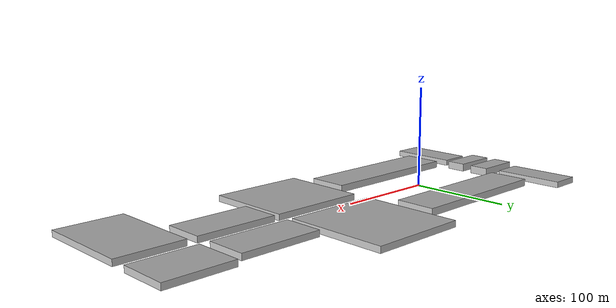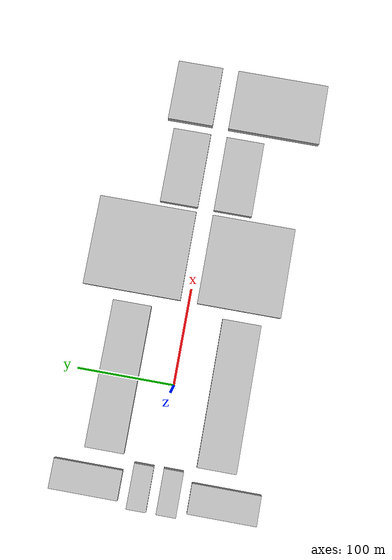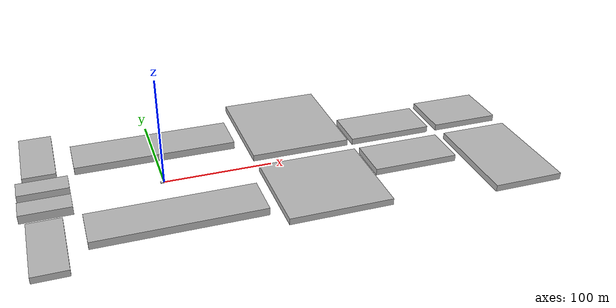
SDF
<sdf version="1.4">
 <world name="default">
  <scene><ambient>0.4 0.4 0.4 1</ambient><background>0.7 0.7 0.7 1</background><shadows>true</shadows></scene>
  <include><uri>model://sun</uri></include>
  <model name="horse_block_mod">
   <static>true</static>
   <pose>0 0 1.25 0 0 0</pose>
   <link name="horse_block">
    <collision name="horse_block_Collision"><geometry><box><size>2 1 2.5</size></box></geometry></collision>
    <visual name="horse_block_Visual">
     <geometry><box><size>2 1 2.5</size></box></geometry>
     <material>
      <script>
       <uri>/home/iris/catkin_ws/src/torino_quadcopter/meshes/materials</uri>
       <name>marble/Diffuse</name>
      </script>
     </material>
    </visual>
   </link>
  </model>
  <model name="horse_scalini_mod">
   <static>true</static>
   <pose>0 0 0.1 0 0 0</pose>
   <link name="horse_scalini">
    <collision name="horse_scalini_Collision"><geometry><box><size>6 3 0.2</size></box></geometry></collision>
    <visual name="horse_scalini_Visual">
     <geometry><box><size>7 3 0.2</size></box></geometry>
     <material>
      <script>
       <uri>/home/iris/catkin_ws/src/torino_quadcopter/meshes/materials</uri>
       <name>marble/Diffuse</name>
      </script>
     </material>
    </visual>
   </link>
  </model>
  <model name="horse_scalini_mod2">
   <static>true</static>
   <pose>0 0 0.2 0 0 0</pose>
   <link name="horse_scalini">
    <collision name="horse_scalini_Collision2"><geometry><box><size>4 2 0.4</size></box></geometry></collision>
    <visual name="horse_scalini_Visual2">
     <geometry><box><size>4 2 0.4</size></box></geometry>
     <material>
      <script>
       <uri>/home/iris/catkin_ws/src/torino_quadcopter/meshes/materials</uri>
       <name>marble/Diffuse</name>
      </script>
     </material>
    </visual>
   </link>
  </model>
  <model name="intesa_mod">
   <static>true</static>
   <pose>0 57 3.5 0 0 0</pose>
   <link name="intesa">
    <inertial><mass>1000</mass><origin xyz="0 0 0" rpy=" 0 0 0"/></inertial>
    <collision name="intesa_Collision">
     <geometry><box><size>150 40 7</size></box></geometry>
     <surface><friction><ode><mu>10000</mu><mu2>10000</mu2></ode></friction></surface>
    </collision>
    <visual name="intesa_Visual"><geometry><box><size>150 40 7</size></box></geometry></visual>
   </link>
  </model>
  <model name="intesa_mod2">
   <static>true</static>
   <pose>0 -57 3.5 0 0 0</pose>
   <link name="intesa">
    <inertial><mass>1000</mass><origin xyz="0 0 0" rpy=" 0 0 0"/></inertial>
    <collision name="intesa_Collision">
     <geometry><box><size>150 40 7</size></box></geometry>
     <surface><friction><ode><mu>10000</mu><mu2>10000</mu2></ode></friction></surface>
    </collision>
    <visual name="intesa_Visual"><geometry><box><size>150 40 7</size></box></geometry></visual>
   </link>
  </model>
  <model name="carloBorromeo_mod">
   <static>true</static>
   <pose>-104 15 4 0 0 0</pose>
   <link name="intesa">
    <inertial><mass>1000</mass><origin xyz="0 0 0" rpy=" 0 0 0"/></inertial>
    <collision name="carloBorromeo_Collision">
     <geometry><box><size>45 20 8</size></box></geometry>
     <surface><friction><ode><mu>10000</mu><mu2>10000</mu2></ode></friction></surface>
    </collision>
    <visual name="carloBorromeo_Visual"><geometry><box><size>45 20 8</size></box></geometry></visual>
   </link>
  </model>
  <model name="carloBorromeobuilding_mod">
   <static>true</static>
   <pose>-106 70 3 0 0 0</pose>
   <link name="intesa">
    <inertial><mass>1000</mass><origin xyz="0 0 0" rpy=" 0 0 0"/></inertial>
    <collision name="carloBorromeobuilding_Collision">
     <geometry><box><size>30 70 6</size></box></geometry>
     <surface><friction><ode><mu>10000</mu><mu2>10000</mu2></ode></friction></surface>
    </collision>
    <visual name="carloBorromeobuilding_Visual"><geometry><box><size>30 70 6</size></box></geometry></visual>
   </link>
  </model>
  <model name="stCristina_mod">
   <static>true</static>
   <pose>-104 -15 4 0 0 0</pose>
   <link name="intesa">
    <inertial><mass>1000</mass><origin xyz="0 0 0" rpy=" 0 0 0"/></inertial>
    <collision name="stCristina_Collision">
     <geometry><box><size>45 20 8</size></box></geometry>
     <surface><friction><ode><mu>10000</mu><mu2>10000</mu2></ode></friction></surface>
    </collision>
    <visual name="stCristina_Visual"><geometry><box><size>45 20 8</size></box></geometry></visual>
   </link>
  </model>
  <model name="cstCristinabuilding_mod">
   <static>true</static>
   <pose>-106 -70 3 0 0 0</pose>
   <link name="intesa">
    <inertial><mass>1000</mass><origin xyz="0 0 0" rpy=" 0 0 0"/></inertial>
    <collision name="stCristinabuilding_Collision">
     <geometry><box><size>30 70 6</size></box></geometry>
     <surface><friction><ode><mu>10000</mu><mu2>10000</mu2></ode></friction></surface>
    </collision>
    <visual name="stCristinabuilding_Visual"><geometry><box><size>30 70 6</size></box></geometry></visual>
   </link>
  </model>
  <model name="ed1_mod">
   <static>true</static>
   <pose>133 60 3 0 0 0</pose>
   <link name="ed1">
    <collision name="ed1_Collision"><geometry><box><size>94 102 6</size></box></geometry></collision>
    <visual name="ed1_Visual"><geometry><box><size>94 102 6</size></box></geometry></visual>
   </link>
  </model>
  <model name="ed2_mod">
   <static>true</static>
   <pose>133 -52 3 0 0 0</pose>
   <link name="ed2">
    <collision name="ed2_Collision"><geometry><box><size>94 87 6</size></box></geometry></collision>
    <visual name="ed2_Visual"><geometry><box><size>94 87 6</size></box></geometry></visual>
   </link>
  </model>
  <model name="ed3_mod">
   <static>true</static>
   <pose>225 28.5 3 0 0 0</pose>
   <link name="ed3">
    <collision name="ed3_Collision"><geometry><box><size>80 40 6</size></box></geometry></collision>
    <visual name="ed3_Visual"><geometry><box><size>80 40 6</size></box></geometry></visual>
   </link>
  </model>
  <model name="ed4_mod">
   <static>true</static>
   <pose>225 -28.5 3 0 0 0</pose>
   <link name="ed2">
    <collision name="ed4_Collision"><geometry><box><size>80 40 6</size></box></geometry></collision>
    <visual name="ed4_Visual"><geometry><box><size>80 40 6</size></box></geometry></visual>
   </link>
  </model>
  <model name="ed5_mod">
   <static>true</static>
   <pose>307 32.5 3 0 0 0</pose>
   <link name="ed5">
    <collision name="ed5_Collision"><geometry><box><size>65 48 6</size></box></geometry></collision>
    <visual name="ed5_Visual"><geometry><box><size>65 48 6</size></box></geometry></visual>
   </link>
  </model>
  <model name="ed6_mod">
   <static>true</static>
   <pose>307 -57 3 0 0 0</pose>
   <link name="ed6">
    <collision name="ed6_Collision"><geometry><box><size>65 97 6</size></box></geometry></collision>
    <visual name="ed6_Visual"><geometry><box><size>65 97 6</size></box></geometry></visual>
   </link>
  </model>
  <physics type="ode">
   <real_time_update_rate>1000.0</real_time_update_rate>
   <max_step_size>0.001</max_step_size>
   <real_time_factor>1</real_time_factor>
   <ode>
    <solver>
     <type>quick</type>
     <iters>150</iters>
     <precon_iters>0</precon_iters>
     <sor>1.400000</sor>
     <use_dynamic_moi_rescaling>1</use_dynamic_moi_rescaling>
    </solver>
    <constraints>
     <cfm>0.00001</cfm>
     <erp>0.2</erp>
     <contact_max_correcting_vel>2000.000000</contact_max_correcting_vel>
     <contact_surface_layer>0.01000</contact_surface_layer>
    </constraints>
   </ode>
  </physics>
 </world>
</sdf>
